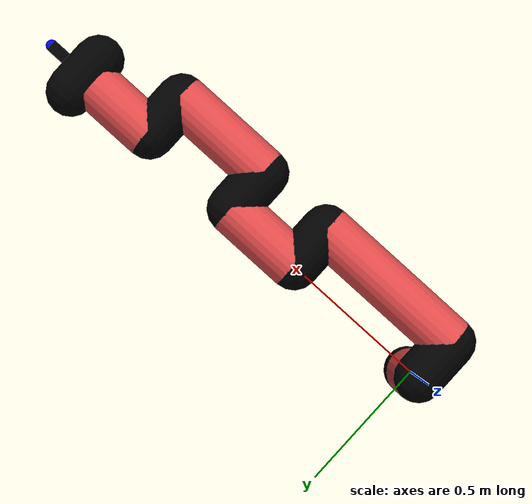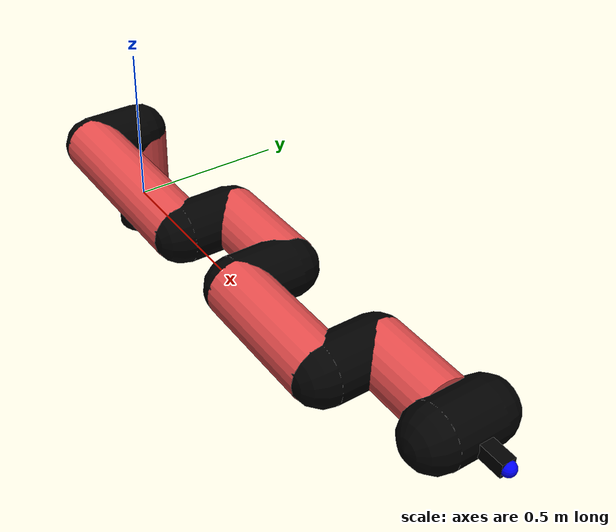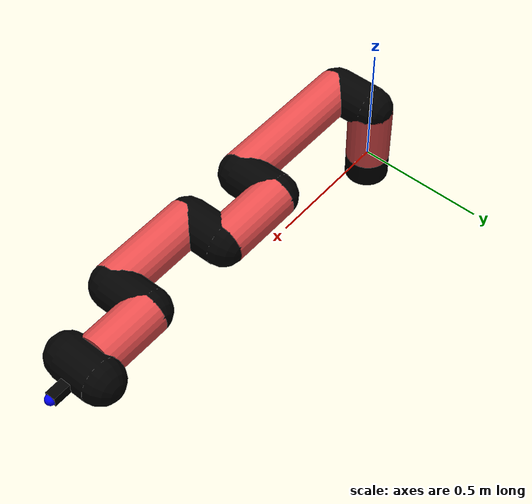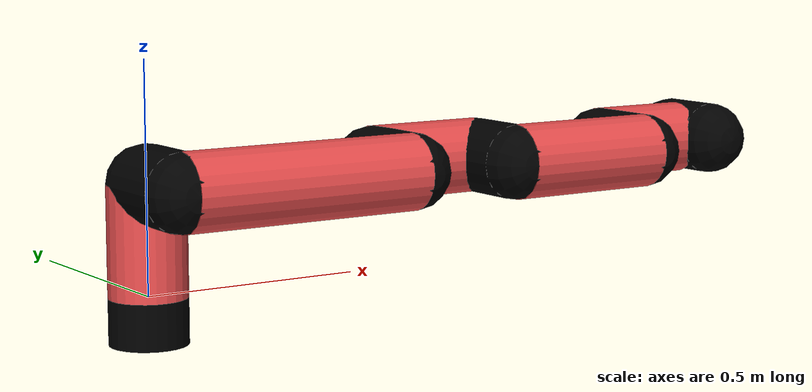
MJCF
<mujoco model="manipulator">
		<compiler angle="degree" coordinate="local" inertiafromgeom="auto" meshdir="meshes/"/>
		<option gravity="0 0 0" integrator="RK4" iterations="30" timestep="0.01"/>

		<default>
		<joint armature="1" limited="true" stiffness="10" damping="15" frictionloss="5.0"/>
		<geom conaffinity="1" condim="3" contype="1" friction=".5 .1 .1" margin="0.002"/>
		<motor ctrllimited="true"/>
		<position ctrllimited="true"/>
		</default>

		<asset>
		<texture builtin="gradient" height="100" rgb1="1.0 1.0 1.0" rgb2="1.0 1.0 1.0" type="skybox" width="100"/>
		<texture builtin="flat" height="32" name="arm_tex" rgb1="0.9 0.3 0.3" type="2d" width="32"/>
		<texture builtin="flat" height="32" name="gripper_tex" rgb1="0.0 0.0 0.0" type="cube" width="32"/>

		<material name="arm_mat" shininess="0.1" specular="0.1" texture="arm_tex"/>
		<material name="gripper_mat" shininess="1" specular="1" texture="gripper_tex"/>
		</asset>

		<worldbody>
		<light cutoff="45" diffuse=".8 .8 .8" dir="0 0.16 -1" directional="false" name="light" pos="0 -2.0 8.0" specular="0.3 0.3 0.3"/>

		<body name="base_link" pos="0 0 -0.1">
		<geom fromto="0 0 0 0 0 0.1" material="arm_mat" name="base_link" rgba="0.0 0.0 0.0 1" size="0.085" type="cylinder"/>
		</body>

		<body name="l1" pos="0 0 0">
<geom fromto="0 0 0 0 0 0.24" material="arm_mat" name="l1" rgba="0.9 0.3 0.3 1" size="0.085" type="cylinder"/>
<geom fromto="0 0 0.24 0 -0.16 0.24" material="arm_mat" name="l1_ex" rgba="0.0 0.0 0.0 1" size="0.085" type="capsule"/>
<joint axis="0 0 1" name="j1" pos="0 0 0" range="-90 90" damping="25.05" frictionloss="12.05"/>

<body name="l2" pos="0 -0.16 0.24">
<geom fromto="0 0 0 0.56 0 0" material="arm_mat" name="l2" rgba="0.9 0.3 0.3 1" size="0.085" type="cylinder"/>
<geom fromto="0.56 0 0 0.56 0.16 0" material="arm_mat" name="l2_ex" rgba="0.0 0.0 0.0 1" size="0.085" type="capsule"/>
<joint axis="0.05 1.03 -0.09" name="j2" pos="0 0 0" range="-90 60" damping="31.5" frictionloss="11.71"/>

<body name="l3" pos="0.56 0.16 0">
<geom fromto="0 0 0 0.28 0 0" material="arm_mat" name="l3" rgba="0.9 0.3 0.3 1" size="0.085" type="cylinder"/>
<geom fromto="0.28 0 0 0.28 -0.16 0" material="arm_mat" name="l3_ex" rgba="0.0 0.0 0.0 1" size="0.085" type="capsule"/>
<joint axis="0.24 1.04 -0.06" name="j3" pos="0 0 0" range="-30 60" damping="26.87" frictionloss="11.84"/>

<body name="l4" pos="0.28 -0.16 0">
<geom fromto="0 0 0 0.37 0 0" material="arm_mat" name="l4" rgba="0.9 0.3 0.3 1" size="0.085" type="cylinder"/>
<geom fromto="0.37 0 0 0.37 0.16 0" material="arm_mat" name="l4_ex" rgba="0.0 0.0 0.0 1" size="0.085" type="capsule"/>
<joint axis="0.03 1.12 0.08" name="j4" pos="0 0 0" range="-30 60" damping="35.81" frictionloss="8.18"/>

<body name="l5" pos="0.37 0.16 0">
<geom fromto="0 0 0 0.24 0 0" material="arm_mat" name="l5" rgba="0.9 0.3 0.3 1" size="0.085" type="cylinder"/>
<joint axis="-0.12 0.78 -0.06" name="j5" pos="0 0 0" range="-30 60" damping="23.09" frictionloss="7.87"/>

<body name="gripper" pos="0.24 0 0">
<geom fromto="0.05 -0.07 0 0.05 0.07 0" material="gripper_mat" name="gripper" rgba="0.0 0.0 0.0 1" size="0.085" type="capsule"/><joint axis="1 0 0" name="j6" pos="0 0 0" range="-90 90" damping="15" frictionloss="5.0"/><body name="finger" pos="0.1 0 0">
<geom fromto="0 0.0 0 0.1 0.0 0" material="gripper_mat" name="finger" rgba="0.0 0.0 0.0 1" size="0.020 0.06 0.06" type="box"/>
</body>
<site name="current" pos="0.2 0. 0.0" rgba="0. 0. 1.0 1" size="0.02" type="sphere"/>
</body>
</body>
</body>
</body>
</body>
</body>
</worldbody>
<actuator>
<motor ctrllimited="true" ctrlrange="-1.0 1.0" joint="j1" gear="68.52"/>
<motor ctrllimited="true" ctrlrange="-1.0 1.0" joint="j2" gear="74.72"/>
<motor ctrllimited="true" ctrlrange="-1.0 1.0" joint="j3" gear="84.16"/>
<motor ctrllimited="true" ctrlrange="-1.0 1.0" joint="j4" gear="82.05"/>
<motor ctrllimited="true" ctrlrange="-1.0 1.0" joint="j5" gear="94.65"/>
<motor ctrllimited="true" ctrlrange="-1.0 1.0" joint="j6" gear="80"/>
</actuator>
</mujoco>
